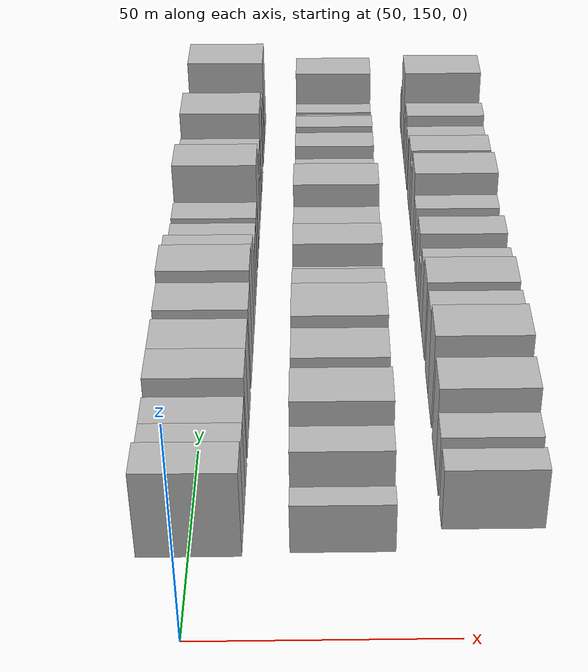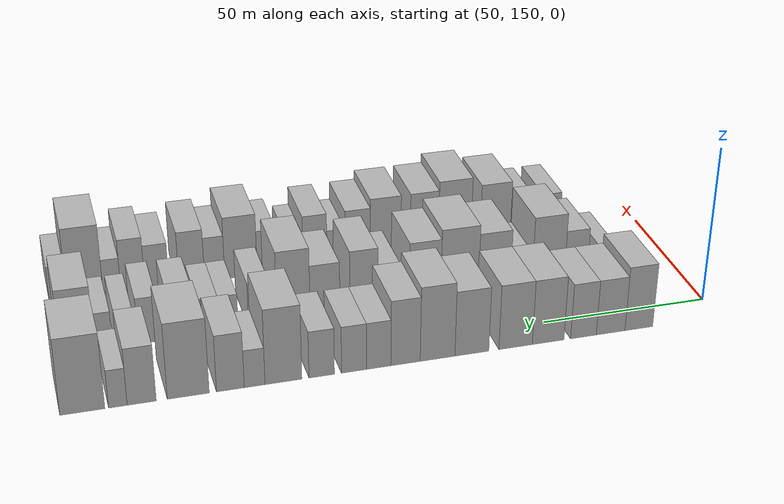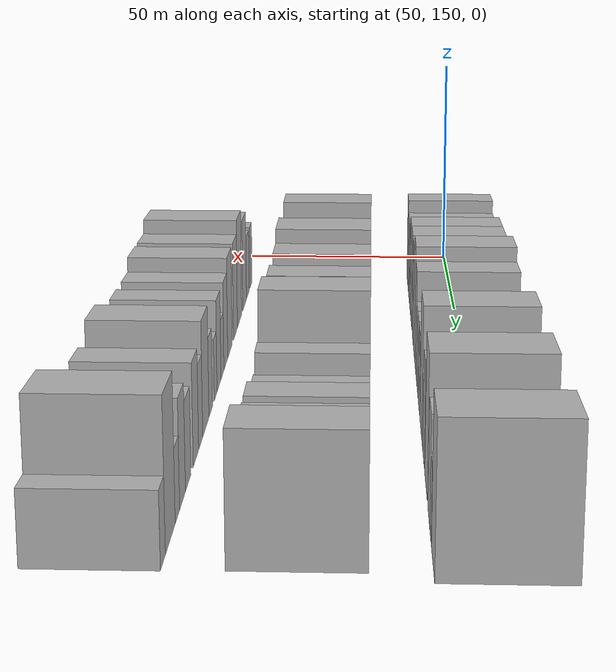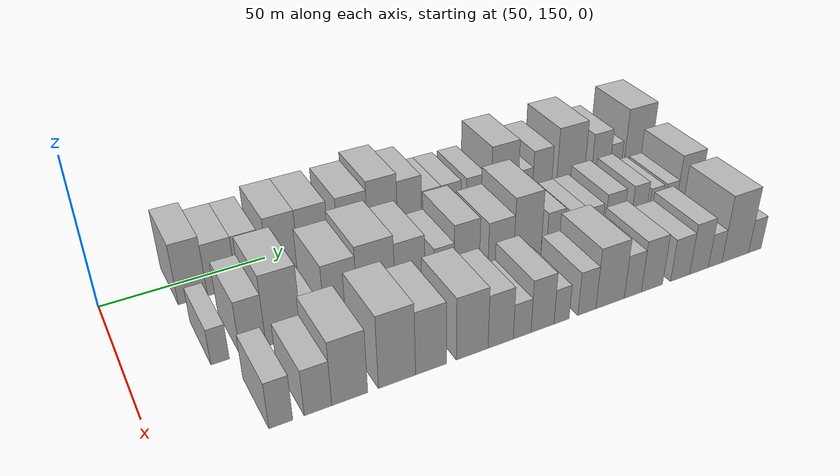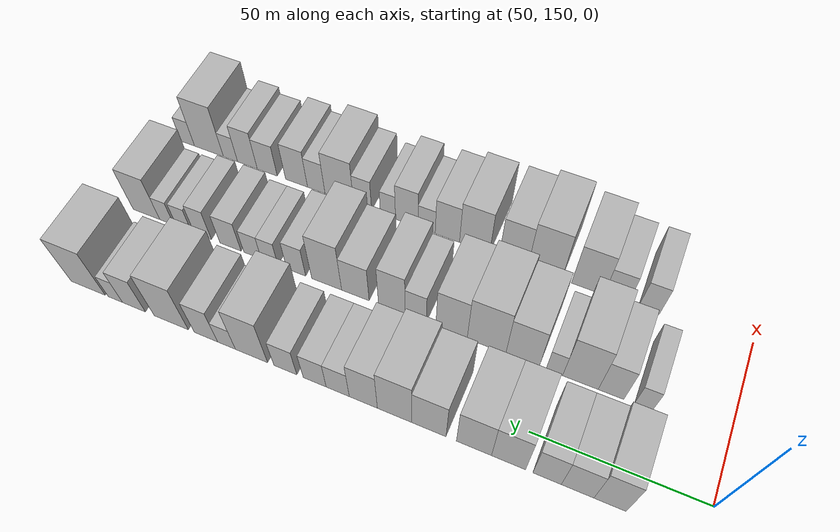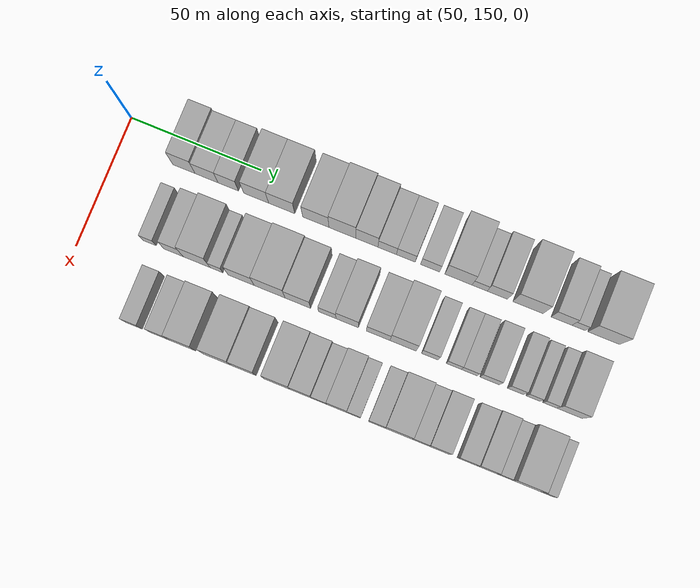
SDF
<sdf version="1.6">
 <world name="default">
  <model name="building_58">
   <static>1</static>
   <pose>50.0000 174.6664 0 0.000000 0.000000 0.000000</pose>
   <link name="link">
    <pose>0 0 10.50 0 0 0</pose>
    <collision name="collision"><geometry><box><size>20.0000 8.6080 21.0000</size></box></geometry></collision>
    <visual name="visual">
     <cast_shadows>0</cast_shadows>
     <geometry><box><size>20.0000 8.6080 21.0000</size></box></geometry>
     <material>
      <script>
       <uri>model://HANNAS_wall/materials/scripts</uri>
       <uri>model://HANNAS_wall/materials/textures</uri>
       <name>vrc/HANNAS_wall</name>
      </script>
     </material>
    </visual>
   </link>
  </model>
  <model name="building_59">
   <static>1</static>
   <pose>50.0000 183.3756 0 0.000000 0.000000 0.000000</pose>
   <link name="link">
    <pose>0 0 9.00 0 0 0</pose>
    <collision name="collision"><geometry><box><size>20.0000 8.8105 18.0000</size></box></geometry></collision>
    <visual name="visual">
     <cast_shadows>0</cast_shadows>
     <geometry><box><size>20.0000 8.8105 18.0000</size></box></geometry>
     <material>
      <script>
       <uri>model://HANNAS_wall/materials/scripts</uri>
       <uri>model://HANNAS_wall/materials/textures</uri>
       <name>vrc/HANNAS_wall</name>
      </script>
     </material>
    </visual>
   </link>
  </model>
  <model name="building_60">
   <static>1</static>
   <pose>50.0000 191.7009 0 0.000000 0.000000 0.000000</pose>
   <link name="link">
    <pose>0 0 9.00 0 0 0</pose>
    <collision name="collision"><geometry><box><size>20.0000 7.8401 18.0000</size></box></geometry></collision>
    <visual name="visual">
     <cast_shadows>0</cast_shadows>
     <geometry><box><size>20.0000 7.8401 18.0000</size></box></geometry>
     <material>
      <script>
       <uri>model://HANNAS_wall/materials/scripts</uri>
       <uri>model://HANNAS_wall/materials/textures</uri>
       <name>vrc/HANNAS_wall</name>
      </script>
     </material>
    </visual>
   </link>
  </model>
  <model name="building_61">
   <static>1</static>
   <pose>50.0000 202.3986 0 0.000000 0.000000 0.000000</pose>
   <link name="link">
    <pose>0 0 10.50 0 0 0</pose>
    <collision name="collision"><geometry><box><size>20.0000 9.5552 21.0000</size></box></geometry></collision>
    <visual name="visual">
     <cast_shadows>0</cast_shadows>
     <geometry><box><size>20.0000 9.5552 21.0000</size></box></geometry>
     <material>
      <script>
       <uri>model://HANNAS_wall/materials/scripts</uri>
       <uri>model://HANNAS_wall/materials/textures</uri>
       <name>vrc/HANNAS_wall</name>
      </script>
     </material>
    </visual>
   </link>
  </model>
  <model name="building_62">
   <static>1</static>
   <pose>50.0000 212.1765 0 0.000000 0.000000 0.000000</pose>
   <link name="link">
    <pose>0 0 10.50 0 0 0</pose>
    <collision name="collision"><geometry><box><size>20.0000 10.0006 21.0000</size></box></geometry></collision>
    <visual name="visual">
     <cast_shadows>0</cast_shadows>
     <geometry><box><size>20.0000 10.0006 21.0000</size></box></geometry>
     <material>
      <script>
       <uri>model://HANNAS_wall/materials/scripts</uri>
       <uri>model://HANNAS_wall/materials/textures</uri>
       <name>vrc/HANNAS_wall</name>
      </script>
     </material>
    </visual>
   </link>
  </model>
  <model name="building_63">
   <static>1</static>
   <pose>50.0000 225.1818 0 0.000000 0.000000 0.000000</pose>
   <link name="link">
    <pose>0 0 10.50 0 0 0</pose>
    <collision name="collision"><geometry><box><size>20.0000 10.0099 21.0000</size></box></geometry></collision>
    <visual name="visual">
     <cast_shadows>0</cast_shadows>
     <geometry><box><size>20.0000 10.0099 21.0000</size></box></geometry>
     <material>
      <script>
       <uri>model://HANNAS_wall/materials/scripts</uri>
       <uri>model://HANNAS_wall/materials/textures</uri>
       <name>vrc/HANNAS_wall</name>
      </script>
     </material>
    </visual>
   </link>
  </model>
  <model name="building_64">
   <static>1</static>
   <pose>50.0000 235.2777 0 0.000000 0.000000 0.000000</pose>
   <link name="link">
    <pose>0 0 12.00 0 0 0</pose>
    <collision name="collision"><geometry><box><size>20.0000 10.1819 24.0000</size></box></geometry></collision>
    <visual name="visual">
     <cast_shadows>0</cast_shadows>
     <geometry><box><size>20.0000 10.1819 24.0000</size></box></geometry>
     <material>
      <script>
       <uri>model://HANNAS_wall/materials/scripts</uri>
       <uri>model://HANNAS_wall/materials/textures</uri>
       <name>vrc/HANNAS_wall</name>
      </script>
     </material>
    </visual>
   </link>
  </model>
  <model name="building_65">
   <static>1</static>
   <pose>50.0000 244.6048 0 0.000000 0.000000 0.000000</pose>
   <link name="link">
    <pose>0 0 10.50 0 0 0</pose>
    <collision name="collision"><geometry><box><size>20.0000 8.4723 21.0000</size></box></geometry></collision>
    <visual name="visual">
     <cast_shadows>0</cast_shadows>
     <geometry><box><size>20.0000 8.4723 21.0000</size></box></geometry>
     <material>
      <script>
       <uri>model://HANNAS_wall/materials/scripts</uri>
       <uri>model://HANNAS_wall/materials/textures</uri>
       <name>vrc/HANNAS_wall</name>
      </script>
     </material>
    </visual>
   </link>
  </model>
  <model name="building_66">
   <static>1</static>
   <pose>50.0000 252.3680 0 0.000000 0.000000 0.000000</pose>
   <link name="link">
    <pose>0 0 7.50 0 0 0</pose>
    <collision name="collision"><geometry><box><size>20.0000 7.0541 15.0000</size></box></geometry></collision>
    <visual name="visual">
     <cast_shadows>0</cast_shadows>
     <geometry><box><size>20.0000 7.0541 15.0000</size></box></geometry>
     <material>
      <script>
       <uri>model://HANNAS_wall/materials/scripts</uri>
       <uri>model://HANNAS_wall/materials/textures</uri>
       <name>vrc/HANNAS_wall</name>
      </script>
     </material>
    </visual>
   </link>
  </model>
  <model name="building_67">
   <static>1</static>
   <pose>50.0000 259.4576 0 0.000000 0.000000 0.000000</pose>
   <link name="link">
    <pose>0 0 7.50 0 0 0</pose>
    <collision name="collision"><geometry><box><size>20.0000 7.1251 15.0000</size></box></geometry></collision>
    <visual name="visual">
     <cast_shadows>0</cast_shadows>
     <geometry><box><size>20.0000 7.1251 15.0000</size></box></geometry>
     <material>
      <script>
       <uri>model://HANNAS_wall/materials/scripts</uri>
       <uri>model://HANNAS_wall/materials/textures</uri>
       <name>vrc/HANNAS_wall</name>
      </script>
     </material>
    </visual>
   </link>
  </model>
  <model name="building_68">
   <static>1</static>
   <pose>50.0000 268.6200 0 0.000000 0.000000 0.000000</pose>
   <link name="link">
    <pose>0 0 7.50 0 0 0</pose>
    <collision name="collision"><geometry><box><size>20.0000 7.1996 15.0000</size></box></geometry></collision>
    <visual name="visual">
     <cast_shadows>0</cast_shadows>
     <geometry><box><size>20.0000 7.1996 15.0000</size></box></geometry>
     <material>
      <script>
       <uri>model://HANNAS_wall/materials/scripts</uri>
       <uri>model://HANNAS_wall/materials/textures</uri>
       <name>vrc/HANNAS_wall</name>
      </script>
     </material>
    </visual>
   </link>
  </model>
  <model name="building_69">
   <static>1</static>
   <pose>50.0000 279.3789 0 0.000000 0.000000 0.000000</pose>
   <link name="link">
    <pose>0 0 12.00 0 0 0</pose>
    <collision name="collision"><geometry><box><size>20.0000 10.3182 24.0000</size></box></geometry></collision>
    <visual name="visual">
     <cast_shadows>0</cast_shadows>
     <geometry><box><size>20.0000 10.3182 24.0000</size></box></geometry>
     <material>
      <script>
       <uri>model://HANNAS_wall/materials/scripts</uri>
       <uri>model://HANNAS_wall/materials/textures</uri>
       <name>vrc/HANNAS_wall</name>
      </script>
     </material>
    </visual>
   </link>
  </model>
  <model name="building_70">
   <static>1</static>
   <pose>50.0000 287.4175 0 0.000000 0.000000 0.000000</pose>
   <link name="link">
    <pose>0 0 6.00 0 0 0</pose>
    <collision name="collision"><geometry><box><size>20.0000 5.7590 12.0000</size></box></geometry></collision>
    <visual name="visual">
     <cast_shadows>0</cast_shadows>
     <geometry><box><size>20.0000 5.7590 12.0000</size></box></geometry>
     <material>
      <script>
       <uri>model://HANNAS_wall/materials/scripts</uri>
       <uri>model://HANNAS_wall/materials/textures</uri>
       <name>vrc/HANNAS_wall</name>
      </script>
     </material>
    </visual>
   </link>
  </model>
  <model name="building_71">
   <static>1</static>
   <pose>50.0000 294.1243 0 0.000000 0.000000 0.000000</pose>
   <link name="link">
    <pose>0 0 9.00 0 0 0</pose>
    <collision name="collision"><geometry><box><size>20.0000 7.6546 18.0000</size></box></geometry></collision>
    <visual name="visual">
     <cast_shadows>0</cast_shadows>
     <geometry><box><size>20.0000 7.6546 18.0000</size></box></geometry>
     <material>
      <script>
       <uri>model://HANNAS_wall/materials/scripts</uri>
       <uri>model://HANNAS_wall/materials/textures</uri>
       <name>vrc/HANNAS_wall</name>
      </script>
     </material>
    </visual>
   </link>
  </model>
  <model name="building_72">
   <static>1</static>
   <pose>50.0000 305.6640 0 0.000000 0.000000 0.000000</pose>
   <link name="link">
    <pose>0 0 12.00 0 0 0</pose>
    <collision name="collision"><geometry><box><size>20.0000 11.4247 24.0000</size></box></geometry></collision>
    <visual name="visual">
     <cast_shadows>0</cast_shadows>
     <geometry><box><size>20.0000 11.4247 24.0000</size></box></geometry>
     <material>
      <script>
       <uri>model://HANNAS_wall/materials/scripts</uri>
       <uri>model://HANNAS_wall/materials/textures</uri>
       <name>vrc/HANNAS_wall</name>
      </script>
     </material>
    </visual>
   </link>
  </model>
  <model name="building_73">
   <static>1</static>
   <pose>50.0000 318.2839 0 0.000000 0.000000 0.000000</pose>
   <link name="link">
    <pose>0 0 9.00 0 0 0</pose>
    <collision name="collision"><geometry><box><size>20.0000 7.8152 18.0000</size></box></geometry></collision>
    <visual name="visual">
     <cast_shadows>0</cast_shadows>
     <geometry><box><size>20.0000 7.8152 18.0000</size></box></geometry>
     <material>
      <script>
       <uri>model://HANNAS_wall/materials/scripts</uri>
       <uri>model://HANNAS_wall/materials/textures</uri>
       <name>vrc/HANNAS_wall</name>
      </script>
     </material>
    </visual>
   </link>
  </model>
  <model name="building_74">
   <static>1</static>
   <pose>50.0000 324.6782 0 0.000000 0.000000 0.000000</pose>
   <link name="link">
    <pose>0 0 6.00 0 0 0</pose>
    <collision name="collision"><geometry><box><size>20.0000 4.9734 12.0000</size></box></geometry></collision>
    <visual name="visual">
     <cast_shadows>0</cast_shadows>
     <geometry><box><size>20.0000 4.9734 12.0000</size></box></geometry>
     <material>
      <script>
       <uri>model://HANNAS_wall/materials/scripts</uri>
       <uri>model://HANNAS_wall/materials/textures</uri>
       <name>vrc/HANNAS_wall</name>
      </script>
     </material>
    </visual>
   </link>
  </model>
  <model name="building_75">
   <static>1</static>
   <pose>50.0000 334.1329 0 0.000000 0.000000 0.000000</pose>
   <link name="link">
    <pose>0 0 12.00 0 0 0</pose>
    <collision name="collision"><geometry><box><size>20.0000 11.9360 24.0000</size></box></geometry></collision>
    <visual name="visual">
     <cast_shadows>0</cast_shadows>
     <geometry><box><size>20.0000 11.9360 24.0000</size></box></geometry>
     <material>
      <script>
       <uri>model://HANNAS_wall/materials/scripts</uri>
       <uri>model://HANNAS_wall/materials/textures</uri>
       <name>vrc/HANNAS_wall</name>
      </script>
     </material>
    </visual>
   </link>
  </model>
  <model name="building_132">
   <static>1</static>
   <pose>79.0000 173.7460 0 0.000000 0.000000 0.000000</pose>
   <link name="link">
    <pose>0 0 6.00 0 0 0</pose>
    <collision name="collision"><geometry><box><size>20.0000 5.0626 12.0000</size></box></geometry></collision>
    <visual name="visual">
     <cast_shadows>0</cast_shadows>
     <geometry><box><size>20.0000 5.0626 12.0000</size></box></geometry>
     <material>
      <script>
       <uri>model://HANNAS_wall/materials/scripts</uri>
       <uri>model://HANNAS_wall/materials/textures</uri>
       <name>vrc/HANNAS_wall</name>
      </script>
     </material>
    </visual>
   </link>
  </model>
  <model name="building_133">
   <static>1</static>
   <pose>79.0000 182.9429 0 0.000000 0.000000 0.000000</pose>
   <link name="link">
    <pose>0 0 9.00 0 0 0</pose>
    <collision name="collision"><geometry><box><size>20.0000 7.3312 18.0000</size></box></geometry></collision>
    <visual name="visual">
     <cast_shadows>0</cast_shadows>
     <geometry><box><size>20.0000 7.3312 18.0000</size></box></geometry>
     <material>
      <script>
       <uri>model://HANNAS_wall/materials/scripts</uri>
       <uri>model://HANNAS_wall/materials/textures</uri>
       <name>vrc/HANNAS_wall</name>
      </script>
     </material>
    </visual>
   </link>
  </model>
  <model name="building_134">
   <static>1</static>
   <pose>79.0000 191.7610 0 0.000000 0.000000 0.000000</pose>
   <link name="link">
    <pose>0 0 12.00 0 0 0</pose>
    <collision name="collision"><geometry><box><size>20.0000 10.3049 24.0000</size></box></geometry></collision>
    <visual name="visual">
     <cast_shadows>0</cast_shadows>
     <geometry><box><size>20.0000 10.3049 24.0000</size></box></geometry>
     <material>
      <script>
       <uri>model://HANNAS_wall/materials/scripts</uri>
       <uri>model://HANNAS_wall/materials/textures</uri>
       <name>vrc/HANNAS_wall</name>
      </script>
     </material>
    </visual>
   </link>
  </model>
  <model name="building_135">
   <static>1</static>
   <pose>79.0000 199.3345 0 0.000000 0.000000 0.000000</pose>
   <link name="link">
    <pose>0 0 6.00 0 0 0</pose>
    <collision name="collision"><geometry><box><size>20.0000 4.8423 12.0000</size></box></geometry></collision>
    <visual name="visual">
     <cast_shadows>0</cast_shadows>
     <geometry><box><size>20.0000 4.8423 12.0000</size></box></geometry>
     <material>
      <script>
       <uri>model://HANNAS_wall/materials/scripts</uri>
       <uri>model://HANNAS_wall/materials/textures</uri>
       <name>vrc/HANNAS_wall</name>
      </script>
     </material>
    </visual>
   </link>
  </model>
  <model name="building_136">
   <static>1</static>
   <pose>79.0000 208.7451 0 0.000000 0.000000 0.000000</pose>
   <link name="link">
    <pose>0 0 10.50 0 0 0</pose>
    <collision name="collision"><geometry><box><size>20.0000 9.9788 21.0000</size></box></geometry></collision>
    <visual name="visual">
     <cast_shadows>0</cast_shadows>
     <geometry><box><size>20.0000 9.9788 21.0000</size></box></geometry>
     <material>
      <script>
       <uri>model://HANNAS_wall/materials/scripts</uri>
       <uri>model://HANNAS_wall/materials/textures</uri>
       <name>vrc/HANNAS_wall</name>
      </script>
     </material>
    </visual>
   </link>
  </model>
  <model name="building_137">
   <static>1</static>
   <pose>79.0000 219.5926 0 0.000000 0.000000 0.000000</pose>
   <link name="link">
    <pose>0 0 12.00 0 0 0</pose>
    <collision name="collision"><geometry><box><size>20.0000 11.7163 24.0000</size></box></geometry></collision>
    <visual name="visual">
     <cast_shadows>0</cast_shadows>
     <geometry><box><size>20.0000 11.7163 24.0000</size></box></geometry>
     <material>
      <script>
       <uri>model://HANNAS_wall/materials/scripts</uri>
       <uri>model://HANNAS_wall/materials/textures</uri>
       <name>vrc/HANNAS_wall</name>
      </script>
     </material>
    </visual>
   </link>
  </model>
  <model name="building_138">
   <static>1</static>
   <pose>79.0000 230.2806 0 0.000000 0.000000 0.000000</pose>
   <link name="link">
    <pose>0 0 10.50 0 0 0</pose>
    <collision name="collision"><geometry><box><size>20.0000 9.6597 21.0000</size></box></geometry></collision>
    <visual name="visual">
     <cast_shadows>0</cast_shadows>
     <geometry><box><size>20.0000 9.6597 21.0000</size></box></geometry>
     <material>
      <script>
       <uri>model://HANNAS_wall/materials/scripts</uri>
       <uri>model://HANNAS_wall/materials/textures</uri>
       <name>vrc/HANNAS_wall</name>
      </script>
     </material>
    </visual>
   </link>
  </model>
  <model name="building_139">
   <static>1</static>
   <pose>79.0000 241.4188 0 0.000000 0.000000 0.000000</pose>
   <link name="link">
    <pose>0 0 7.50 0 0 0</pose>
    <collision name="collision"><geometry><box><size>20.0000 6.6168 15.0000</size></box></geometry></collision>
    <visual name="visual">
     <cast_shadows>0</cast_shadows>
     <geometry><box><size>20.0000 6.6168 15.0000</size></box></geometry>
     <material>
      <script>
       <uri>model://HANNAS_wall/materials/scripts</uri>
       <uri>model://HANNAS_wall/materials/textures</uri>
       <name>vrc/HANNAS_wall</name>
      </script>
     </material>
    </visual>
   </link>
  </model>
  <model name="building_140">
   <static>1</static>
   <pose>79.0000 248.9670 0 0.000000 0.000000 0.000000</pose>
   <link name="link">
    <pose>0 0 10.50 0 0 0</pose>
    <collision name="collision"><geometry><box><size>20.0000 8.4797 21.0000</size></box></geometry></collision>
    <visual name="visual">
     <cast_shadows>0</cast_shadows>
     <geometry><box><size>20.0000 8.4797 21.0000</size></box></geometry>
     <material>
      <script>
       <uri>model://HANNAS_wall/materials/scripts</uri>
       <uri>model://HANNAS_wall/materials/textures</uri>
       <name>vrc/HANNAS_wall</name>
      </script>
     </material>
    </visual>
   </link>
  </model>
  <model name="building_141">
   <static>1</static>
   <pose>79.0000 260.6700 0 0.000000 0.000000 0.000000</pose>
   <link name="link">
    <pose>0 0 9.00 0 0 0</pose>
    <collision name="collision"><geometry><box><size>20.0000 8.9263 18.0000</size></box></geometry></collision>
    <visual name="visual">
     <cast_shadows>0</cast_shadows>
     <geometry><box><size>20.0000 8.9263 18.0000</size></box></geometry>
     <material>
      <script>
       <uri>model://HANNAS_wall/materials/scripts</uri>
       <uri>model://HANNAS_wall/materials/textures</uri>
       <name>vrc/HANNAS_wall</name>
      </script>
     </material>
    </visual>
   </link>
  </model>
  <model name="building_142">
   <static>1</static>
   <pose>79.0000 270.0622 0 0.000000 0.000000 0.000000</pose>
   <link name="link">
    <pose>0 0 12.00 0 0 0</pose>
    <collision name="collision"><geometry><box><size>20.0000 9.8582 24.0000</size></box></geometry></collision>
    <visual name="visual">
     <cast_shadows>0</cast_shadows>
     <geometry><box><size>20.0000 9.8582 24.0000</size></box></geometry>
     <material>
      <script>
       <uri>model://HANNAS_wall/materials/scripts</uri>
       <uri>model://HANNAS_wall/materials/textures</uri>
       <name>vrc/HANNAS_wall</name>
      </script>
     </material>
    </visual>
   </link>
  </model>
  <model name="building_143">
   <static>1</static>
   <pose>79.0000 280.1603 0 0.000000 0.000000 0.000000</pose>
   <link name="link">
    <pose>0 0 7.50 0 0 0</pose>
    <collision name="collision"><geometry><box><size>20.0000 6.3378 15.0000</size></box></geometry></collision>
    <visual name="visual">
     <cast_shadows>0</cast_shadows>
     <geometry><box><size>20.0000 6.3378 15.0000</size></box></geometry>
     <material>
      <script>
       <uri>model://HANNAS_wall/materials/scripts</uri>
       <uri>model://HANNAS_wall/materials/textures</uri>
       <name>vrc/HANNAS_wall</name>
      </script>
     </material>
    </visual>
   </link>
  </model>
  <model name="building_144">
   <static>1</static>
   <pose>79.0000 289.1463 0 0.000000 0.000000 0.000000</pose>
   <link name="link">
    <pose>0 0 6.00 0 0 0</pose>
    <collision name="collision"><geometry><box><size>20.0000 5.6344 12.0000</size></box></geometry></collision>
    <visual name="visual">
     <cast_shadows>0</cast_shadows>
     <geometry><box><size>20.0000 5.6344 12.0000</size></box></geometry>
     <material>
      <script>
       <uri>model://HANNAS_wall/materials/scripts</uri>
       <uri>model://HANNAS_wall/materials/textures</uri>
       <name>vrc/HANNAS_wall</name>
      </script>
     </material>
    </visual>
   </link>
  </model>
  <model name="building_145">
   <static>1</static>
   <pose>79.0000 294.9382 0 0.000000 0.000000 0.000000</pose>
   <link name="link">
    <pose>0 0 6.00 0 0 0</pose>
    <collision name="collision"><geometry><box><size>20.0000 5.9494 12.0000</size></box></geometry></collision>
    <visual name="visual">
     <cast_shadows>0</cast_shadows>
     <geometry><box><size>20.0000 5.9494 12.0000</size></box></geometry>
     <material>
      <script>
       <uri>model://HANNAS_wall/materials/scripts</uri>
       <uri>model://HANNAS_wall/materials/textures</uri>
       <name>vrc/HANNAS_wall</name>
      </script>
     </material>
    </visual>
   </link>
  </model>
  <model name="building_146">
   <static>1</static>
   <pose>79.0000 302.5682 0 0.000000 0.000000 0.000000</pose>
   <link name="link">
    <pose>0 0 7.50 0 0 0</pose>
    <collision name="collision"><geometry><box><size>20.0000 7.3105 15.0000</size></box></geometry></collision>
    <visual name="visual">
     <cast_shadows>0</cast_shadows>
     <geometry><box><size>20.0000 7.3105 15.0000</size></box></geometry>
     <material>
      <script>
       <uri>model://HANNAS_wall/materials/scripts</uri>
       <uri>model://HANNAS_wall/materials/textures</uri>
       <name>vrc/HANNAS_wall</name>
      </script>
     </material>
    </visual>
   </link>
  </model>
  <model name="building_147">
   <static>1</static>
   <pose>79.0000 312.2340 0 0.000000 0.000000 0.000000</pose>
   <link name="link">
    <pose>0 0 7.50 0 0 0</pose>
    <collision name="collision"><geometry><box><size>20.0000 6.0211 15.0000</size></box></geometry></collision>
    <visual name="visual">
     <cast_shadows>0</cast_shadows>
     <geometry><box><size>20.0000 6.0211 15.0000</size></box></geometry>
     <material>
      <script>
       <uri>model://HANNAS_wall/materials/scripts</uri>
       <uri>model://HANNAS_wall/materials/textures</uri>
       <name>vrc/HANNAS_wall</name>
      </script>
     </material>
    </visual>
   </link>
  </model>
  <model name="building_148">
   <static>1</static>
   <pose>79.0000 318.8653 0 0.000000 0.000000 0.000000</pose>
   <link name="link">
    <pose>0 0 6.00 0 0 0</pose>
    <collision name="collision"><geometry><box><size>20.0000 5.2415 12.0000</size></box></geometry></collision>
    <visual name="visual">
     <cast_shadows>0</cast_shadows>
     <geometry><box><size>20.0000 5.2415 12.0000</size></box></geometry>
     <material>
      <script>
       <uri>model://HANNAS_wall/materials/scripts</uri>
       <uri>model://HANNAS_wall/materials/textures</uri>
       <name>vrc/HANNAS_wall</name>
      </script>
     </material>
    </visual>
   </link>
  </model>
  <model name="building_149">
   <static>1</static>
   <pose>79.0000 325.0184 0 0.000000 0.000000 0.000000</pose>
   <link name="link">
    <pose>0 0 6.00 0 0 0</pose>
    <collision name="collision"><geometry><box><size>20.0000 5.0647 12.0000</size></box></geometry></collision>
    <visual name="visual">
     <cast_shadows>0</cast_shadows>
     <geometry><box><size>20.0000 5.0647 12.0000</size></box></geometry>
     <material>
      <script>
       <uri>model://HANNAS_wall/materials/scripts</uri>
       <uri>model://HANNAS_wall/materials/textures</uri>
       <name>vrc/HANNAS_wall</name>
      </script>
     </material>
    </visual>
   </link>
  </model>
  <model name="building_150">
   <static>1</static>
   <pose>79.0000 332.3990 0 0.000000 0.000000 0.000000</pose>
   <link name="link">
    <pose>0 0 10.50 0 0 0</pose>
    <collision name="collision"><geometry><box><size>20.0000 9.6966 21.0000</size></box></geometry></collision>
    <visual name="visual">
     <cast_shadows>0</cast_shadows>
     <geometry><box><size>20.0000 9.6966 21.0000</size></box></geometry>
     <material>
      <script>
       <uri>model://HANNAS_wall/materials/scripts</uri>
       <uri>model://HANNAS_wall/materials/textures</uri>
       <name>vrc/HANNAS_wall</name>
      </script>
     </material>
    </visual>
   </link>
  </model>
  <model name="building_207">
   <static>1</static>
   <pose>108.0000 180.1566 0 0.000000 0.000000 0.000000</pose>
   <link name="link">
    <pose>0 0 7.50 0 0 0</pose>
    <collision name="collision"><geometry><box><size>20.0000 6.2405 15.0000</size></box></geometry></collision>
    <visual name="visual">
     <cast_shadows>0</cast_shadows>
     <geometry><box><size>20.0000 6.2405 15.0000</size></box></geometry>
     <material>
      <script>
       <uri>model://HANNAS_wall/materials/scripts</uri>
       <uri>model://HANNAS_wall/materials/textures</uri>
       <name>vrc/HANNAS_wall</name>
      </script>
     </material>
    </visual>
   </link>
  </model>
  <model name="building_208">
   <static>1</static>
   <pose>108.0000 189.9788 0 0.000000 0.000000 0.000000</pose>
   <link name="link">
    <pose>0 0 7.50 0 0 0</pose>
    <collision name="collision"><geometry><box><size>20.0000 7.4039 15.0000</size></box></geometry></collision>
    <visual name="visual">
     <cast_shadows>0</cast_shadows>
     <geometry><box><size>20.0000 7.4039 15.0000</size></box></geometry>
     <material>
      <script>
       <uri>model://HANNAS_wall/materials/scripts</uri>
       <uri>model://HANNAS_wall/materials/textures</uri>
       <name>vrc/HANNAS_wall</name>
      </script>
     </material>
    </visual>
   </link>
  </model>
  <model name="building_209">
   <static>1</static>
   <pose>108.0000 198.6536 0 0.000000 0.000000 0.000000</pose>
   <link name="link">
    <pose>0 0 10.50 0 0 0</pose>
    <collision name="collision"><geometry><box><size>20.0000 9.9456 21.0000</size></box></geometry></collision>
    <visual name="visual">
     <cast_shadows>0</cast_shadows>
     <geometry><box><size>20.0000 9.9456 21.0000</size></box></geometry>
     <material>
      <script>
       <uri>model://HANNAS_wall/materials/scripts</uri>
       <uri>model://HANNAS_wall/materials/textures</uri>
       <name>vrc/HANNAS_wall</name>
      </script>
     </material>
    </visual>
   </link>
  </model>
  <model name="building_210">
   <static>1</static>
   <pose>108.0000 211.9769 0 0.000000 0.000000 0.000000</pose>
   <link name="link">
    <pose>0 0 12.00 0 0 0</pose>
    <collision name="collision"><geometry><box><size>20.0000 10.7010 24.0000</size></box></geometry></collision>
    <visual name="visual">
     <cast_shadows>0</cast_shadows>
     <geometry><box><size>20.0000 10.7010 24.0000</size></box></geometry>
     <material>
      <script>
       <uri>model://HANNAS_wall/materials/scripts</uri>
       <uri>model://HANNAS_wall/materials/textures</uri>
       <name>vrc/HANNAS_wall</name>
      </script>
     </material>
    </visual>
   </link>
  </model>
  <model name="building_211">
   <static>1</static>
   <pose>108.0000 221.9066 0 0.000000 0.000000 0.000000</pose>
   <link name="link">
    <pose>0 0 10.50 0 0 0</pose>
    <collision name="collision"><geometry><box><size>20.0000 9.1586 21.0000</size></box></geometry></collision>
    <visual name="visual">
     <cast_shadows>0</cast_shadows>
     <geometry><box><size>20.0000 9.1586 21.0000</size></box></geometry>
     <material>
      <script>
       <uri>model://HANNAS_wall/materials/scripts</uri>
       <uri>model://HANNAS_wall/materials/textures</uri>
       <name>vrc/HANNAS_wall</name>
      </script>
     </material>
    </visual>
   </link>
  </model>
  <model name="building_212">
   <static>1</static>
   <pose>108.0000 234.3894 0 0.000000 0.000000 0.000000</pose>
   <link name="link">
    <pose>0 0 10.50 0 0 0</pose>
    <collision name="collision"><geometry><box><size>20.0000 9.8071 21.0000</size></box></geometry></collision>
    <visual name="visual">
     <cast_shadows>0</cast_shadows>
     <geometry><box><size>20.0000 9.8071 21.0000</size></box></geometry>
     <material>
      <script>
       <uri>model://HANNAS_wall/materials/scripts</uri>
       <uri>model://HANNAS_wall/materials/textures</uri>
       <name>vrc/HANNAS_wall</name>
      </script>
     </material>
    </visual>
   </link>
  </model>
  <model name="building_213">
   <static>1</static>
   <pose>108.0000 243.2915 0 0.000000 0.000000 0.000000</pose>
   <link name="link">
    <pose>0 0 9.00 0 0 0</pose>
    <collision name="collision"><geometry><box><size>20.0000 7.9970 18.0000</size></box></geometry></collision>
    <visual name="visual">
     <cast_shadows>0</cast_shadows>
     <geometry><box><size>20.0000 7.9970 18.0000</size></box></geometry>
     <material>
      <script>
       <uri>model://HANNAS_wall/materials/scripts</uri>
       <uri>model://HANNAS_wall/materials/textures</uri>
       <name>vrc/HANNAS_wall</name>
      </script>
     </material>
    </visual>
   </link>
  </model>
  <model name="building_214">
   <static>1</static>
   <pose>108.0000 250.1681 0 0.000000 0.000000 0.000000</pose>
   <link name="link">
    <pose>0 0 6.00 0 0 0</pose>
    <collision name="collision"><geometry><box><size>20.0000 5.7563 12.0000</size></box></geometry></collision>
    <visual name="visual">
     <cast_shadows>0</cast_shadows>
     <geometry><box><size>20.0000 5.7563 12.0000</size></box></geometry>
     <material>
      <script>
       <uri>model://HANNAS_wall/materials/scripts</uri>
       <uri>model://HANNAS_wall/materials/textures</uri>
       <name>vrc/HANNAS_wall</name>
      </script>
     </material>
    </visual>
   </link>
  </model>
  <model name="building_215">
   <static>1</static>
   <pose>108.0000 256.8264 0 0.000000 0.000000 0.000000</pose>
   <link name="link">
    <pose>0 0 9.00 0 0 0</pose>
    <collision name="collision"><geometry><box><size>20.0000 7.5602 18.0000</size></box></geometry></collision>
    <visual name="visual">
     <cast_shadows>0</cast_shadows>
     <geometry><box><size>20.0000 7.5602 18.0000</size></box></geometry>
     <material>
      <script>
       <uri>model://HANNAS_wall/materials/scripts</uri>
       <uri>model://HANNAS_wall/materials/textures</uri>
       <name>vrc/HANNAS_wall</name>
      </script>
     </material>
    </visual>
   </link>
  </model>
  <model name="building_216">
   <static>1</static>
   <pose>108.0000 263.1659 0 0.000000 0.000000 0.000000</pose>
   <link name="link">
    <pose>0 0 6.00 0 0 0</pose>
    <collision name="collision"><geometry><box><size>20.0000 5.1188 12.0000</size></box></geometry></collision>
    <visual name="visual">
     <cast_shadows>0</cast_shadows>
     <geometry><box><size>20.0000 5.1188 12.0000</size></box></geometry>
     <material>
      <script>
       <uri>model://HANNAS_wall/materials/scripts</uri>
       <uri>model://HANNAS_wall/materials/textures</uri>
       <name>vrc/HANNAS_wall</name>
      </script>
     </material>
    </visual>
   </link>
  </model>
  <model name="building_217">
   <static>1</static>
   <pose>108.0000 271.8179 0 0.000000 0.000000 0.000000</pose>
   <link name="link">
    <pose>0 0 7.50 0 0 0</pose>
    <collision name="collision"><geometry><box><size>20.0000 6.1852 15.0000</size></box></geometry></collision>
    <visual name="visual">
     <cast_shadows>0</cast_shadows>
     <geometry><box><size>20.0000 6.1852 15.0000</size></box></geometry>
     <material>
      <script>
       <uri>model://HANNAS_wall/materials/scripts</uri>
       <uri>model://HANNAS_wall/materials/textures</uri>
       <name>vrc/HANNAS_wall</name>
      </script>
     </material>
    </visual>
   </link>
  </model>
  <model name="building_218">
   <static>1</static>
   <pose>108.0000 279.9154 0 0.000000 0.000000 0.000000</pose>
   <link name="link">
    <pose>0 0 10.50 0 0 0</pose>
    <collision name="collision"><geometry><box><size>20.0000 10.0097 21.0000</size></box></geometry></collision>
    <visual name="visual">
     <cast_shadows>0</cast_shadows>
     <geometry><box><size>20.0000 10.0097 21.0000</size></box></geometry>
     <material>
      <script>
       <uri>model://HANNAS_wall/materials/scripts</uri>
       <uri>model://HANNAS_wall/materials/textures</uri>
       <name>vrc/HANNAS_wall</name>
      </script>
     </material>
    </visual>
   </link>
  </model>
  <model name="building_219">
   <static>1</static>
   <pose>108.0000 288.0089 0 0.000000 0.000000 0.000000</pose>
   <link name="link">
    <pose>0 0 7.50 0 0 0</pose>
    <collision name="collision"><geometry><box><size>20.0000 6.1772 15.0000</size></box></geometry></collision>
    <visual name="visual">
     <cast_shadows>0</cast_shadows>
     <geometry><box><size>20.0000 6.1772 15.0000</size></box></geometry>
     <material>
      <script>
       <uri>model://HANNAS_wall/materials/scripts</uri>
       <uri>model://HANNAS_wall/materials/textures</uri>
       <name>vrc/HANNAS_wall</name>
      </script>
     </material>
    </visual>
   </link>
  </model>
  <model name="building_220">
   <static>1</static>
   <pose>108.0000 295.0129 0 0.000000 0.000000 0.000000</pose>
   <link name="link">
    <pose>0 0 9.00 0 0 0</pose>
    <collision name="collision"><geometry><box><size>20.0000 7.8307 18.0000</size></box></geometry></collision>
    <visual name="visual">
     <cast_shadows>0</cast_shadows>
     <geometry><box><size>20.0000 7.8307 18.0000</size></box></geometry>
     <material>
      <script>
       <uri>model://HANNAS_wall/materials/scripts</uri>
       <uri>model://HANNAS_wall/materials/textures</uri>
       <name>vrc/HANNAS_wall</name>
      </script>
     </material>
    </visual>
   </link>
  </model>
  <model name="building_221">
   <static>1</static>
   <pose>108.0000 305.5515 0 0.000000 0.000000 0.000000</pose>
   <link name="link">
    <pose>0 0 7.50 0 0 0</pose>
    <collision name="collision"><geometry><box><size>20.0000 7.2465 15.0000</size></box></geometry></collision>
    <visual name="visual">
     <cast_shadows>0</cast_shadows>
     <geometry><box><size>20.0000 7.2465 15.0000</size></box></geometry>
     <material>
      <script>
       <uri>model://HANNAS_wall/materials/scripts</uri>
       <uri>model://HANNAS_wall/materials/textures</uri>
       <name>vrc/HANNAS_wall</name>
      </script>
     </material>
    </visual>
   </link>
  </model>
  <model name="building_222">
   <static>1</static>
   <pose>108.0000 312.7837 0 0.000000 0.000000 0.000000</pose>
   <link name="link">
    <pose>0 0 9.00 0 0 0</pose>
    <collision name="collision"><geometry><box><size>20.0000 7.2180 18.0000</size></box></geometry></collision>
    <visual name="visual">
     <cast_shadows>0</cast_shadows>
     <geometry><box><size>20.0000 7.2180 18.0000</size></box></geometry>
     <material>
      <script>
       <uri>model://HANNAS_wall/materials/scripts</uri>
       <uri>model://HANNAS_wall/materials/textures</uri>
       <name>vrc/HANNAS_wall</name>
      </script>
     </material>
    </visual>
   </link>
  </model>
  <model name="building_223">
   <static>1</static>
   <pose>108.0000 319.0276 0 0.000000 0.000000 0.000000</pose>
   <link name="link">
    <pose>0 0 6.00 0 0 0</pose>
    <collision name="collision"><geometry><box><size>20.0000 5.2697 12.0000</size></box></geometry></collision>
    <visual name="visual">
     <cast_shadows>0</cast_shadows>
     <geometry><box><size>20.0000 5.2697 12.0000</size></box></geometry>
     <material>
      <script>
       <uri>model://HANNAS_wall/materials/scripts</uri>
       <uri>model://HANNAS_wall/materials/textures</uri>
       <name>vrc/HANNAS_wall</name>
      </script>
     </material>
    </visual>
   </link>
  </model>
  <model name="building_224">
   <static>1</static>
   <pose>108.0000 327.0464 0 0.000000 0.000000 0.000000</pose>
   <link name="link">
    <pose>0 0 12.00 0 0 0</pose>
    <collision name="collision"><geometry><box><size>20.0000 10.7679 24.0000</size></box></geometry></collision>
    <visual name="visual">
     <cast_shadows>0</cast_shadows>
     <geometry><box><size>20.0000 10.7679 24.0000</size></box></geometry>
     <material>
      <script>
       <uri>model://HANNAS_wall/materials/scripts</uri>
       <uri>model://HANNAS_wall/materials/textures</uri>
       <name>vrc/HANNAS_wall</name>
      </script>
     </material>
    </visual>
   </link>
  </model>
  <model name="building_225">
   <static>1</static>
   <pose>108.0000 335.0070 0 0.000000 0.000000 0.000000</pose>
   <link name="link">
    <pose>0 0 6.00 0 0 0</pose>
    <collision name="collision"><geometry><box><size>20.0000 5.1533 12.0000</size></box></geometry></collision>
    <visual name="visual">
     <cast_shadows>0</cast_shadows>
     <geometry><box><size>20.0000 5.1533 12.0000</size></box></geometry>
     <material>
      <script>
       <uri>model://HANNAS_wall/materials/scripts</uri>
       <uri>model://HANNAS_wall/materials/textures</uri>
       <name>vrc/HANNAS_wall</name>
      </script>
     </material>
    </visual>
   </link>
  </model>
 </world>
</sdf>
